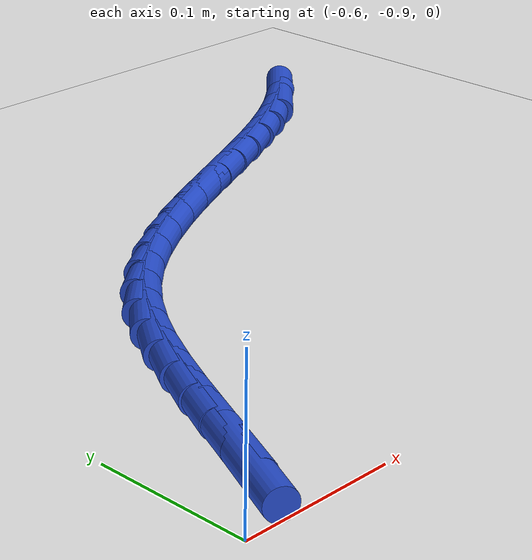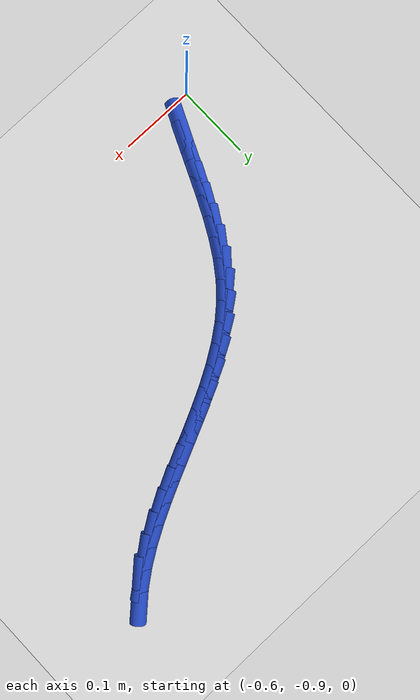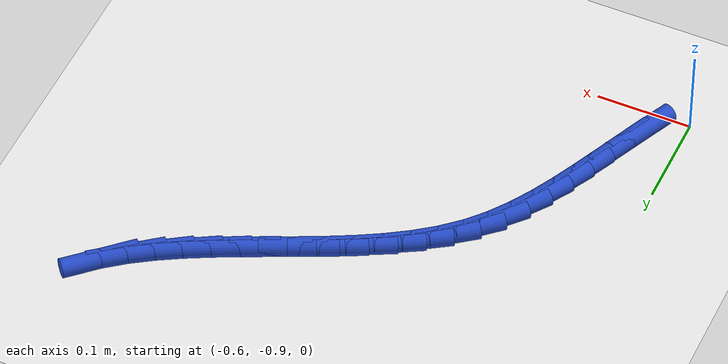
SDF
<sdf version="1.6">
 <world name="default">
  <model name="ground_plane">
   <static>1</static>
   <link name="link">
    <collision name="collision">
     <geometry><plane><normal>0 0 1</normal><size>100 100</size></plane></geometry>
     <surface><friction><ode><mu>100</mu><mu2>50</mu2></ode></friction></surface>
    </collision>
    <visual name="visual">
     <cast_shadows>0</cast_shadows>
     <geometry><plane><normal>0 0 1</normal><size>100 100</size></plane></geometry>
     <material>
      <script><uri>file://media/materials/scripts/gazebo.material</uri><name>Gazebo/WhiteGlow</name></script>
     </material>
    </visual>
   </link>
  </model>
  <model name="line">
   <link name="link_220">
    <pose>-0.5602046977221197 -0.8648880978467823 0.01 0 1.57 1.1352212446239713</pose>
    <collision name="collision">
     <geometry><cylinder><radius>0.01</radius><length>0.08</length></cylinder></geometry>
    </collision>
    <visual name="visual">
     <material>
      <script><name>Gazebo/Blue</name><uri>file://media/materials/scripts/gazebo.material</uri></script>
     </material>
     <geometry><cylinder><radius>0.01</radius><length>0.08</length></cylinder></geometry>
    </visual>
   </link>
   <link name="link_221">
    <pose>-0.5483417474765934 -0.839397542170708 0.01 0 1.57 1.1477437604593723</pose>
    <collision name="collision">
     <geometry><cylinder><radius>0.01</radius><length>0.08</length></cylinder></geometry>
    </collision>
    <visual name="visual">
     <material>
      <script><name>Gazebo/Blue</name><uri>file://media/materials/scripts/gazebo.material</uri></script>
     </material>
     <geometry><cylinder><radius>0.01</radius><length>0.08</length></cylinder></geometry>
    </visual>
   </link>
   <link name="link_222">
    <pose>-0.5367810830850134 -0.8137208075617917 0.01 0 1.57 1.1432277426552857</pose>
    <collision name="collision">
     <geometry><cylinder><radius>0.01</radius><length>0.08</length></cylinder></geometry>
    </collision>
    <visual name="visual">
     <material>
      <script><name>Gazebo/Blue</name><uri>file://media/materials/scripts/gazebo.material</uri></script>
     </material>
     <geometry><cylinder><radius>0.01</radius><length>0.08</length></cylinder></geometry>
    </visual>
   </link>
   <link name="link_223">
    <pose>-0.525146284514602 -0.7881880631299882 0.01 0 1.57 1.1214217608020849</pose>
    <collision name="collision">
     <geometry><cylinder><radius>0.01</radius><length>0.08</length></cylinder></geometry>
    </collision>
    <visual name="visual">
     <material>
      <script><name>Gazebo/Blue</name><uri>file://media/materials/scripts/gazebo.material</uri></script>
     </material>
     <geometry><cylinder><radius>0.01</radius><length>0.08</length></cylinder></geometry>
    </visual>
   </link>
   <link name="link_224">
    <pose>-0.5130609317325809 -0.7631294779852513 0.01 0 1.57 1.0815864619020221</pose>
    <collision name="collision">
     <geometry><cylinder><radius>0.01</radius><length>0.08</length></cylinder></geometry>
    </collision>
    <visual name="visual">
     <material>
      <script><name>Gazebo/Blue</name><uri>file://media/materials/scripts/gazebo.material</uri></script>
     </material>
     <geometry><cylinder><radius>0.01</radius><length>0.08</length></cylinder></geometry>
    </visual>
   </link>
   <link name="link_225">
    <pose>-0.5001486047061726 -0.738875221237536 0.01 0 1.57 1.0226570686220482</pose>
    <collision name="collision">
     <geometry><cylinder><radius>0.01</radius><length>0.08</length></cylinder></geometry>
    </collision>
    <visual name="visual">
     <material>
      <script><name>Gazebo/Blue</name><uri>file://media/materials/scripts/gazebo.material</uri></script>
     </material>
     <geometry><cylinder><radius>0.01</radius><length>0.08</length></cylinder></geometry>
    </visual>
   </link>
   <link name="link_226">
    <pose>-0.4860328834025984 -0.7157554619967955 0.01 0 1.57 0.9436215271218662</pose>
    <collision name="collision">
     <geometry><cylinder><radius>0.01</radius><length>0.08</length></cylinder></geometry>
    </collision>
    <visual name="visual">
     <material>
      <script><name>Gazebo/Blue</name><uri>file://media/materials/scripts/gazebo.material</uri></script>
     </material>
     <geometry><cylinder><radius>0.01</radius><length>0.08</length></cylinder></geometry>
    </visual>
   </link>
   <link name="link_227">
    <pose>-0.4703373477890811 -0.6941003693729854 0.01 0 1.57 0.8443029906209779</pose>
    <collision name="collision">
     <geometry><cylinder><radius>0.01</radius><length>0.08</length></cylinder></geometry>
    </collision>
    <visual name="visual">
     <material>
      <script><name>Gazebo/Blue</name><uri>file://media/materials/scripts/gazebo.material</uri></script>
     </material>
     <geometry><cylinder><radius>0.01</radius><length>0.08</length></cylinder></geometry>
    </visual>
   </link>
   <link name="link_228">
    <pose>-0.4526875369821361 -0.6742383728458623 0.01 0 1.57 0.7371164577362816</pose>
    <collision name="collision">
     <geometry><cylinder><radius>0.01</radius><length>0.08</length></cylinder></geometry>
    </collision>
    <visual name="visual">
     <material>
      <script><name>Gazebo/Blue</name><uri>file://media/materials/scripts/gazebo.material</uri></script>
     </material>
     <geometry><cylinder><radius>0.01</radius><length>0.08</length></cylinder></geometry>
    </visual>
   </link>
   <link name="link_229">
    <pose>-0.4329297139576898 -0.6563019097408164 0.01 0 1.57 0.6450407012577384</pose>
    <collision name="collision">
     <geometry><cylinder><radius>0.01</radius><length>0.08</length></cylinder></geometry>
    </collision>
    <visual name="visual">
     <material>
      <script><name>Gazebo/Blue</name><uri>file://media/materials/scripts/gazebo.material</uri></script>
     </material>
     <geometry><cylinder><radius>0.01</radius><length>0.08</length></cylinder></geometry>
    </visual>
   </link>
   <link name="link_230">
    <pose>-0.4113303047044722 -0.640050332868112 0.01 0 1.57 0.5707716144772141</pose>
    <collision name="collision">
     <geometry><cylinder><radius>0.01</radius><length>0.08</length></cylinder></geometry>
    </collision>
    <visual name="visual">
     <material>
      <script><name>Gazebo/Blue</name><uri>file://media/materials/scripts/gazebo.material</uri></script>
     </material>
     <geometry><cylinder><radius>0.01</radius><length>0.08</length></cylinder></geometry>
    </visual>
   </link>
   <link name="link_231">
    <pose>-0.38820284166324265 -0.6252011667778373 0.01 0 1.57 0.5135391529569355</pose>
    <collision name="collision">
     <geometry><cylinder><radius>0.01</radius><length>0.08</length></cylinder></geometry>
    </collision>
    <visual name="visual">
     <material>
      <script><name>Gazebo/Blue</name><uri>file://media/materials/scripts/gazebo.material</uri></script>
     </material>
     <geometry><cylinder><radius>0.01</radius><length>0.08</length></cylinder></geometry>
    </visual>
   </link>
   <link name="link_232">
    <pose>-0.3638608572747614 -0.6114719360200813 0.01 0 1.57 0.4721767162150924</pose>
    <collision name="collision">
     <geometry><cylinder><radius>0.01</radius><length>0.08</length></cylinder></geometry>
    </collision>
    <visual name="visual">
     <material>
      <script><name>Gazebo/Blue</name><uri>file://media/materials/scripts/gazebo.material</uri></script>
     </material>
     <geometry><cylinder><radius>0.01</radius><length>0.08</length></cylinder></geometry>
    </visual>
   </link>
   <link name="link_233">
    <pose>-0.33861788397978826 -0.5985801651449323 0.01 0 1.57 0.44557302395107884</pose>
    <collision name="collision">
     <geometry><cylinder><radius>0.01</radius><length>0.08</length></cylinder></geometry>
    </collision>
    <visual name="visual">
     <material>
      <script><name>Gazebo/Blue</name><uri>file://media/materials/scripts/gazebo.material</uri></script>
     </material>
     <geometry><cylinder><radius>0.01</radius><length>0.08</length></cylinder></geometry>
    </visual>
   </link>
   <link name="link_234">
    <pose>-0.31278745421908344 -0.5862433787024791 0.01 0 1.57 0.43291655074832214</pose>
    <collision name="collision">
     <geometry><cylinder><radius>0.01</radius><length>0.08</length></cylinder></geometry>
    </collision>
    <visual name="visual">
     <material>
      <script><name>Gazebo/Blue</name><uri>file://media/materials/scripts/gazebo.material</uri></script>
     </material>
     <geometry><cylinder><radius>0.01</radius><length>0.08</length></cylinder></geometry>
    </visual>
   </link>
   <link name="link_235">
    <pose>-0.2866831004334071 -0.5741791012428109 0.01 0 1.57 0.43380995515804643</pose>
    <collision name="collision">
     <geometry><cylinder><radius>0.01</radius><length>0.08</length></cylinder></geometry>
    </collision>
    <visual name="visual">
     <material>
      <script><name>Gazebo/Blue</name><uri>file://media/materials/scripts/gazebo.material</uri></script>
     </material>
     <geometry><cylinder><radius>0.01</radius><length>0.08</length></cylinder></geometry>
    </visual>
   </link>
   <link name="link_236">
    <pose>-0.2606183550635183 -0.5621048573160153 0.01 0 1.57 0.44831357913568115</pose>
    <collision name="collision">
     <geometry><cylinder><radius>0.01</radius><length>0.08</length></cylinder></geometry>
    </collision>
    <visual name="visual">
     <material>
      <script><name>Gazebo/Blue</name><uri>file://media/materials/scripts/gazebo.material</uri></script>
     </material>
     <geometry><cylinder><radius>0.01</radius><length>0.08</length></cylinder></geometry>
    </visual>
   </link>
   <link name="link_237">
    <pose>-0.23490675055017882 -0.5497381714721824 0.01 0 1.57 0.4769461382327183</pose>
    <collision name="collision">
     <geometry><cylinder><radius>0.01</radius><length>0.08</length></cylinder></geometry>
    </collision>
    <visual name="visual">
     <material>
      <script><name>Gazebo/Blue</name><uri>file://media/materials/scripts/gazebo.material</uri></script>
     </material>
     <geometry><cylinder><radius>0.01</radius><length>0.08</length></cylinder></geometry>
    </visual>
   </link>
   <link name="link_238">
    <pose>-0.20986181933414788 -0.5367965682614002 0.01 0 1.57 0.5206398385193697</pose>
    <collision name="collision">
     <geometry><cylinder><radius>0.01</radius><length>0.08</length></cylinder></geometry>
    </collision>
    <visual name="visual">
     <material>
      <script><name>Gazebo/Blue</name><uri>file://media/materials/scripts/gazebo.material</uri></script>
     </material>
     <geometry><cylinder><radius>0.01</radius><length>0.08</length></cylinder></geometry>
    </visual>
   </link>
   <link name="link_239">
    <pose>-0.18579709385618556 -0.5229975722337573 0.01 0 1.57 0.5806152584133532</pose>
    <collision name="collision">
     <geometry><cylinder><radius>0.01</radius><length>0.08</length></cylinder></geometry>
    </collision>
    <visual name="visual">
     <material>
      <script><name>Gazebo/Blue</name><uri>file://media/materials/scripts/gazebo.material</uri></script>
     </material>
     <geometry><cylinder><radius>0.01</radius><length>0.08</length></cylinder></geometry>
    </visual>
   </link>
   <link name="link_240">
    <pose>-0.1630261065570519 -0.5080587079393427 0.01 0 1.57 0.6581082951051416</pose>
    <collision name="collision">
     <geometry><cylinder><radius>0.01</radius><length>0.08</length></cylinder></geometry>
    </collision>
    <visual name="visual">
     <material>
      <script><name>Gazebo/Blue</name><uri>file://media/materials/scripts/gazebo.material</uri></script>
     </material>
     <geometry><cylinder><radius>0.01</radius><length>0.08</length></cylinder></geometry>
    </visual>
   </link>
   <link name="link_241">
    <pose>-0.14186238987750702 -0.491697499928245 0.01 0 1.57 0.7538642657015505</pose>
    <collision name="collision">
     <geometry><cylinder><radius>0.01</radius><length>0.08</length></cylinder></geometry>
    </collision>
    <visual name="visual">
     <material>
      <script><name>Gazebo/Blue</name><uri>file://media/materials/scripts/gazebo.material</uri></script>
     </material>
     <geometry><cylinder><radius>0.01</radius><length>0.08</length></cylinder></geometry>
    </visual>
   </link>
  </model>
 </world>
</sdf>
